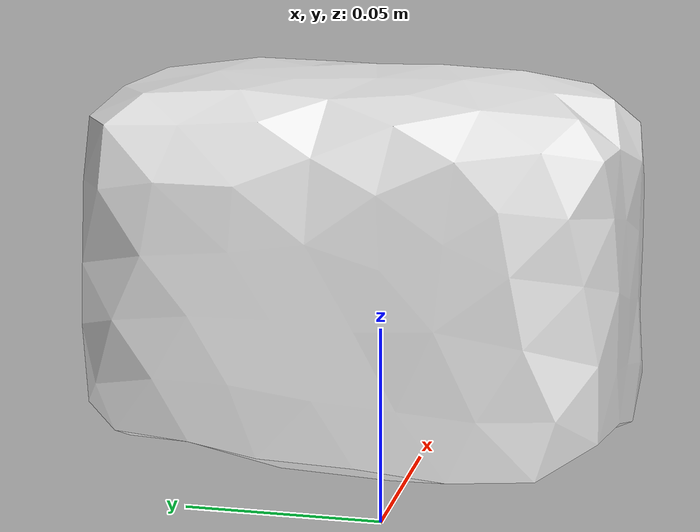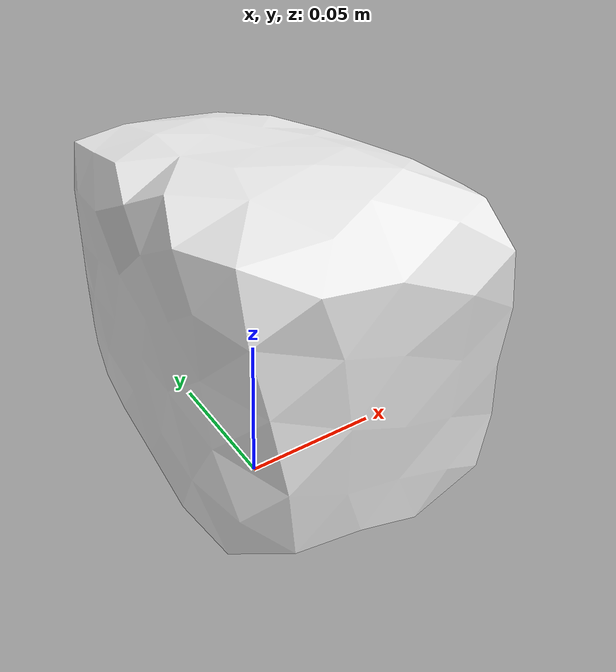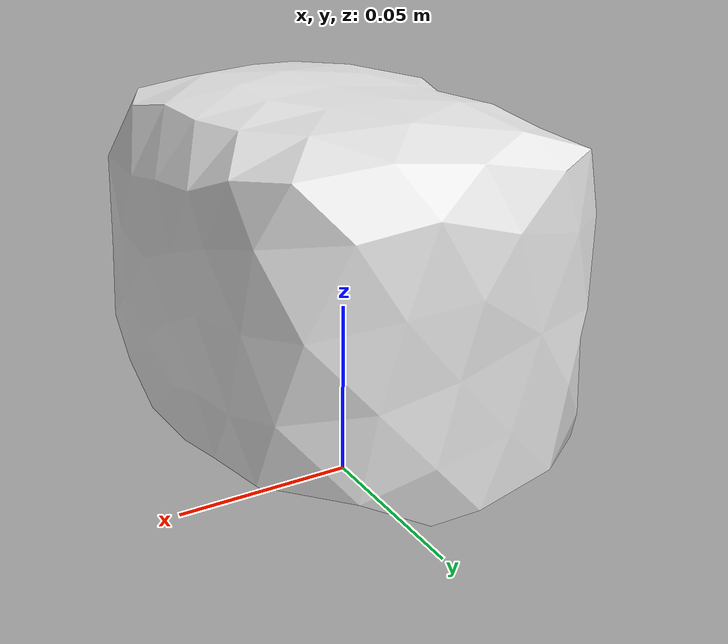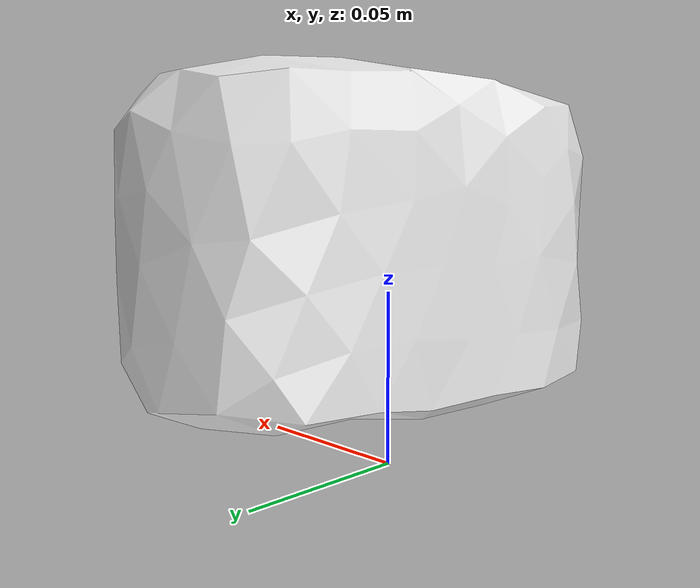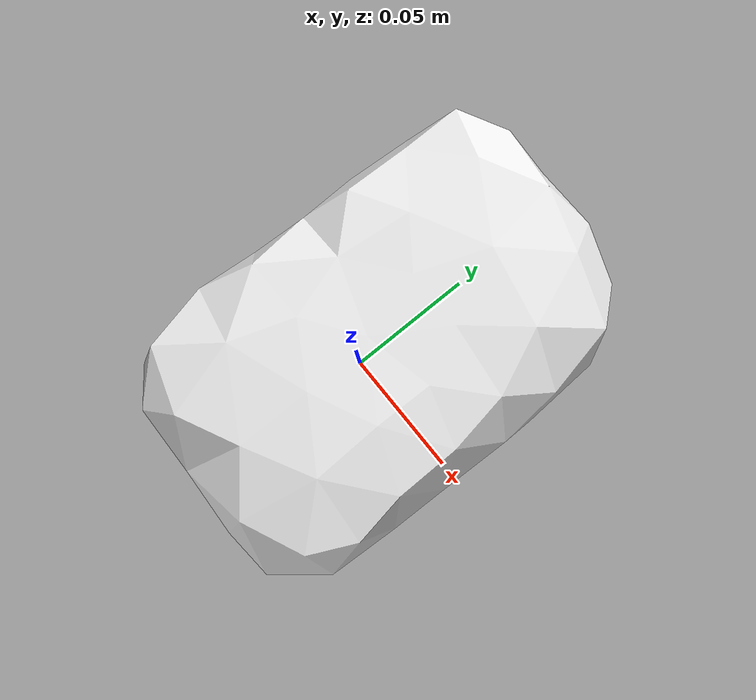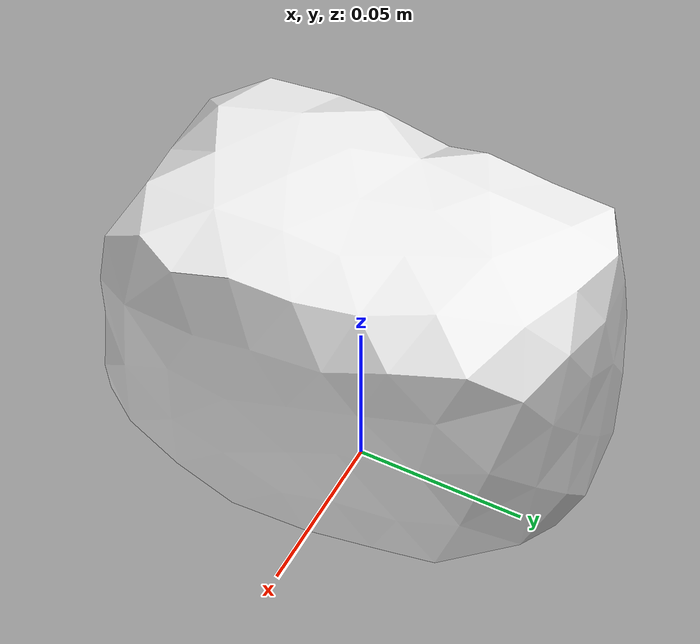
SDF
<?xml version="1.0" ?><sdf version="1.5"><model name="amd-box">
<link name="link">
<pose>0 0 0 0 0 0</pose>
<inertial>
<pose>0.0075855 0.005614 0.0652035 0 0 0</pose>
<mass>0.29</mass>
<inertia>
<ixx>0.000628808</ixx>
<ixy>0</ixy><iyy>0.000393697</iyy>
<ixz>0</ixz><iyz>0</iyz><izz>0.000614363</izz>
</inertia>
</inertial>
<visual name="visual">
<pose>0 0 0 0 0 0</pose>
<geometry><mesh><uri>model://amd-box/meshes/amd-box.dae</uri></mesh></geometry>
<material><script><uri>file://media/materials/scripts/gazebo.material</uri><name>Gazebo/WhiteGlow</name></script></material></visual>
<collision name="collision"><pose>0 0 0 0 0 0</pose><geometry><mesh><uri>model://amd-box/meshes/amd-box.dae</uri></mesh></geometry>
<surface><friction><ode><mu>1.000000</mu><mu2>1.000000</mu2></ode></friction></surface>
</collision></link></model></sdf>
